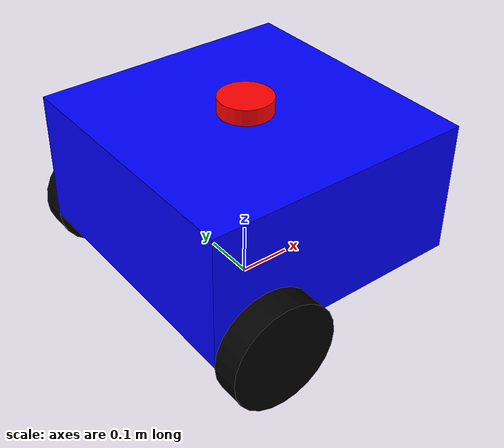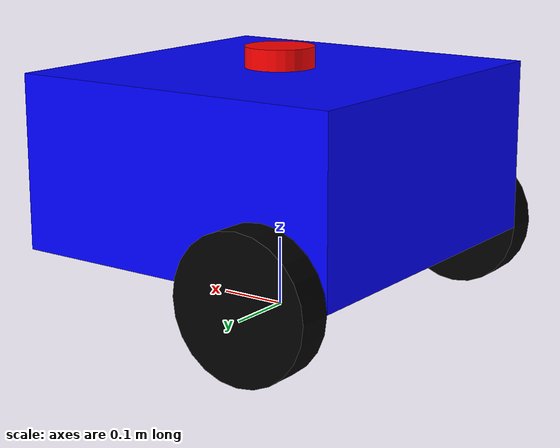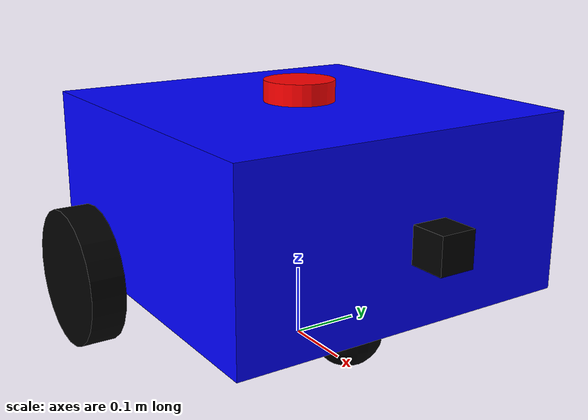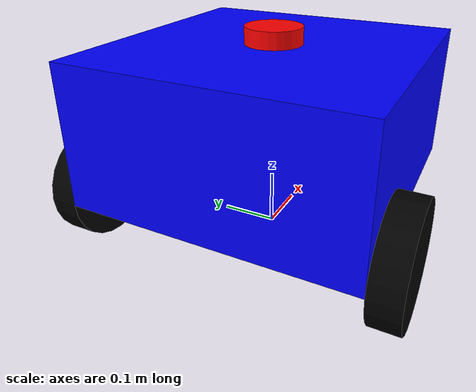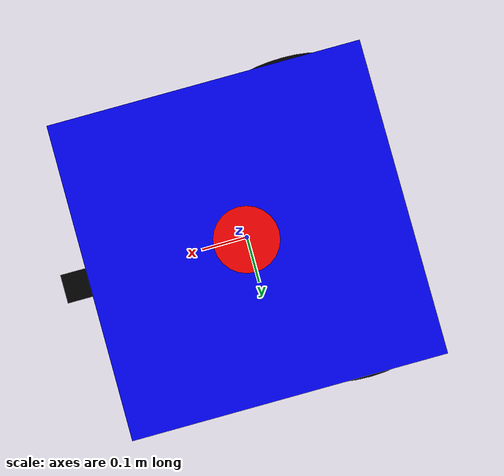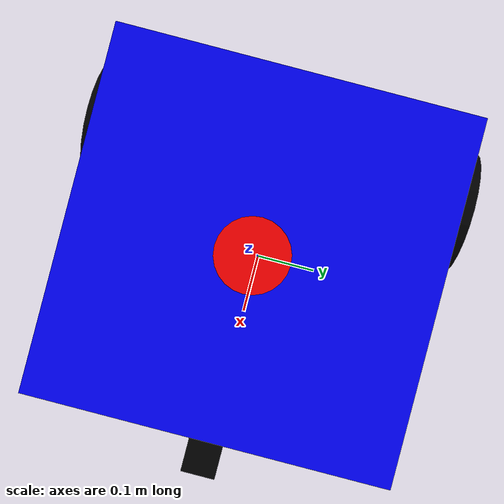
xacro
<?xml version="1.0"?>
<robot name="my_robot" xmlns:xacro="http://www.ros.org/wiki/xacro">

    <material name="red"><color rgba="1 0 0 1"/></material>
    <material name="blue"><color rgba="0 0 1 1"/></material>
    <material name="black"><color rgba="0 0 0 1"/></material>

    <link name="base_footprint"/>

    <joint name="base_footprint_joint" type="fixed">
        <parent link="base_footprint"/>
        <child link="base_link"/>
        <origin xyz="0 0 0.225" rpy="0 0 0"/>
    </joint>

    <link name="base_link">
        <visual>
            <geometry><box size="0.5 0.5 0.25"/></geometry>
            <origin xyz="0 0 0" rpy="0 0 0"/>
            <material name="blue"/>
        </visual>
        <inertial>
            <mass value="1.0"/>
            <origin xyz="0 0 0" rpy="0 0 0"/>
            <inertia ixx="0.02604" ixy="0.0" ixz="0.0" iyy="0.02604" iyz="0.0" izz="0.04167"/>
        </inertial>
        <collision>
            <geometry><box size="0.5 0.5 0.25"/></geometry>
            <origin xyz="0 0 0" rpy="0 0 0"/>
        </collision>
    </link>

    <link name="right_wheel">
        <visual>
            <geometry><cylinder radius="0.1" length="0.05"/></geometry>
            <origin xyz="0 0 0" rpy="1.5708 0 0"/>
            <material name="black"/>
        </visual>
        <inertial>
            <mass value="0.5"/>
            <origin xyz="0 0 0" rpy="1.5708 0 0"/>
            <inertia ixx="0.001355" ixy="0.0" ixz="0.0" iyy="0.001355" iyz="0.0" izz="0.001355"/>
        </inertial>
        <collision>
            <geometry><sphere radius="0.1"/></geometry>
            <origin xyz="0 0 0" rpy="1.5708 0 0"/>
        </collision>
    </link>

    <link name="left_wheel">
        <visual>
            <geometry><cylinder radius="0.1" length="0.05"/></geometry>
            <origin xyz="0 0 0" rpy="1.5708 0 0"/>
            <material name="black"/>
        </visual>
        <inertial>
            <mass value="0.5"/>
            <origin xyz="0 0 0" rpy="1.5708 0 0"/>
            <inertia ixx="0.001355" ixy="0.0" ixz="0.0" iyy="0.001355" iyz="0.0" izz="0.001355"/>
        </inertial>
        <collision>
            <geometry><sphere radius="0.1"/></geometry>
            <origin xyz="0 0 0" rpy="1.5708 0 0"/>
        </collision>
    </link>

    <link name="caster_wheel">
        <visual>
            <geometry><sphere radius="0.05"/></geometry>
            <origin xyz="0 0 0" rpy="0 0 0"/>
            <material name="black"/>
        </visual>
        <inertial>
            <mass value="0.2"/>
            <origin xyz="0 0 0" rpy="0 0 0"/>
            <inertia ixx="0.0002" ixy="0.0" ixz="0.0" iyy="0.0002" iyz="0.0" izz="0.0002"/>
        </inertial>
        <collision>
            <geometry><sphere radius="0.05"/></geometry>
            <origin xyz="0 0 0" rpy="0 0 0"/>
        </collision>
    </link>

    <link name="lidar_link">
        <visual>
            <geometry><cylinder radius="0.05" length="0.05"/></geometry>
            <origin xyz="0 0 0" rpy="0 0 0"/>
            <material name="red"/>
        </visual>
        <inertial>
            <mass value="0.1"/>
            <origin xyz="0 0 0" rpy="0 0 0"/>
            <inertia ixx="0.00008" ixy="0.0" ixz="0.0" iyy="0.00008" iyz="0.0" izz="0.00008"/>
        </inertial>
        <collision>
            <geometry><cylinder radius="0.05" length="0.05"/></geometry>
            <origin xyz="0 0 0" rpy="0 0 0"/>
        </collision>
    </link>

    <link name="camera_link">
        <visual>
            <geometry><box size="0.05 0.05 0.05"/></geometry>
            <origin xyz="0 0 0" rpy="0 0 0"/>
            <material name="black"/>
        </visual>
        <inertial>
            <mass value="0.01"/>
            <origin xyz="0 0 0" rpy="0 0 0"/>
            <inertia ixx="0.000004" ixy="0.0" ixz="0.0" iyy="0.000004" iyz="0.0" izz="0.000004"/>
        </inertial>
        <collision>
            <geometry><box size="0.05 0.05 0.05"/></geometry>
            <origin xyz="0 0 0" rpy="0 0 0"/>
        </collision>
    </link>

    <joint name="right_wheel_joint" type="continuous">
        <parent link="base_link"/>
        <child link="right_wheel"/>
        <origin xyz="-0.15 -0.275 -0.125" rpy="0 1.57 0"/>
        <axis xyz="0 1 0"/>
    </joint>

    <joint name="left_wheel_joint" type="continuous">
        <parent link="base_link"/>
        <child link="left_wheel"/>
        <origin xyz="-0.15 0.275 -0.125" rpy="0 1.57 0"/>
        <axis xyz="0 1 0"/>
    </joint>

    <joint name="caster_wheel_joint" type="fixed">
        <parent link="base_link"/>
        <child link="caster_wheel"/>
        <origin xyz="0.12 0 -0.175" rpy="0 0 0"/>
    </joint>

    <joint name="lidar_joint" type="fixed">
        <parent link="base_link"/>
        <child link="lidar_link"/>
        <origin xyz="0 0 0.13" rpy="0 0 0"/>
    </joint>

    <joint name="camera_joint" type="fixed">
        <parent link="base_link"/>
        <child link="camera_link"/>
        <origin xyz="0.30 0 0" rpy="0 0 0"/>
    </joint>

    <gazebo>
    <plugin filename="gz-sim-diff-drive-system" name="gz::sim::systems::DiffDrive">
      <left_joint>left_wheel_joint</left_joint>
      <right_joint>right_wheel_joint</right_joint>
      <wheel_separation>0.55</wheel_separation>
      <wheel_radius>0.1</wheel_radius>

      <topic>/cmd_vel</topic>
      <odom_topic>/odom</odom_topic>
      <frame_id>odom</frame_id>
      <child_frame_id>base_footprint</child_frame_id>
      <publish_odom>true</publish_odom>
      <publish_odom_tf>true</publish_odom_tf>
    </plugin>

    <plugin filename="gz-sim-joint-state-publisher-system" name="gz::sim::systems::JointStatePublisher">
      <topic>/joint_states</topic>
      <joint_name>right_wheel_joint</joint_name>
      <joint_name>left_wheel_joint</joint_name>
    </plugin>
  </gazebo>
    <gazebo reference="caster_wheel">
        <mu1>0.1</mu1>
        <mu2>0.1</mu2>
    </gazebo>

    <gazebo reference="camera_link">
    <sensor name="my_camera" type="camera">
      <pose>0 0 0 0 0 0</pose>
      <visualize>true</visualize> <update_rate>30.0</update_rate> <camera>
        <horizontal_fov>1.089</horizontal_fov> <image>
          <width>640</width>
          <height>480</height>
          <format>R8G8B8</format> </image>
        <clip>
          <near>0.05</near> <far>8.0</far>    </clip>
      </camera>

      <topic>/camera/image_raw</topic>
    </sensor>
  </gazebo>

  <gazebo reference="lidar_link">
    <sensor name="gpu_lidar" type="gpu_lidar">
      <update_rate>10</update_rate>
      <topic>/scan</topic>
      <gz_frame_id>lidar_link</gz_frame_id>
      <pose>0 0 0 0 0 0</pose>
      <always_on>true</always_on>
      <visualize>true</visualize>
      <lidar>
        <scan>
          <horizontal>
            <samples>360</samples>
            <resolution>1</resolution>
            <min_angle>-3.14159</min_angle>
            <max_angle>3.14159</max_angle>
          </horizontal>
        </scan>
        <range>
          <min>0.12</min>
          <max>12.0</max>
          <resolution>0.01</resolution>
        </range>
      </lidar>
    </sensor>
  </gazebo>

<gazebo reference="camera_joint">
    <preserveFixedJoint>true</preserveFixedJoint>
</gazebo>

</robot>
